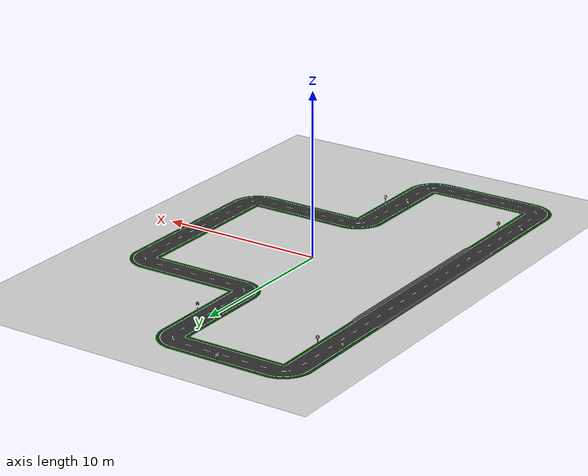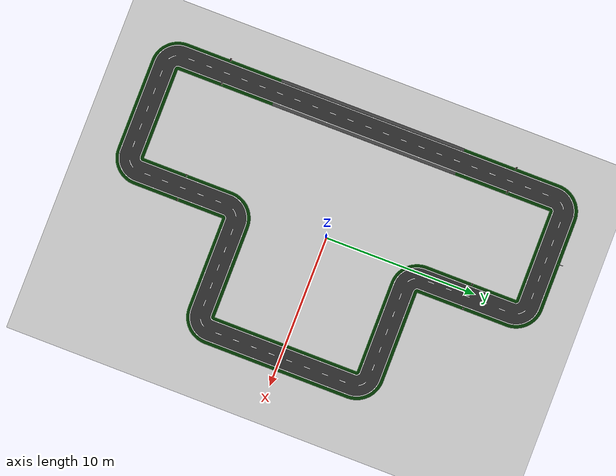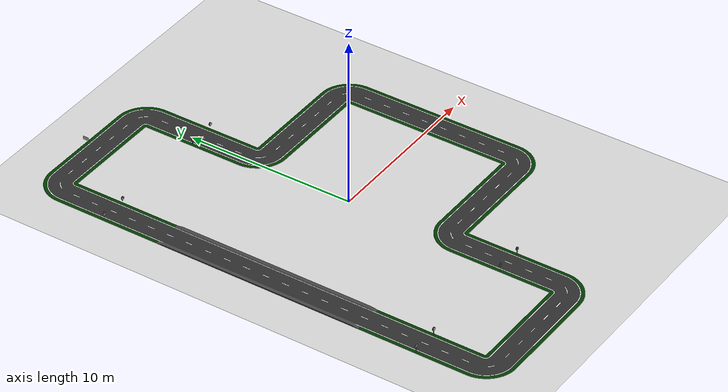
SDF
<sdf version="1.7">
 <world name="default">
  <light name="sun" type="directional">
   <pose>0 0 10 0 -0 0</pose>
   <diffuse>0.8 0.8 0.8 1</diffuse>
   <specular>0.2 0.2 0.2 1</specular>
   <attenuation>
    <range>1000</range>
    <constant>0.9</constant>
    <linear>0.01</linear>
    <quadratic>0.001</quadratic>
   </attenuation>
   <direction>-0.5 0.1 -0.9</direction>
   <spot><inner_angle>0</inner_angle><outer_angle>0</outer_angle><falloff>0</falloff></spot>
  </light>
  <model name="ground_plane">
   <static>1</static>
   <link name="link">
    <collision name="collision">
     <geometry><plane><normal>0 0 1</normal><size>100 100</size></plane></geometry>
     <surface>
      <contact><collide_bitmask>65535</collide_bitmask></contact>
      <friction><ode><mu>100</mu><mu2>50</mu2></ode></friction>
     </surface>
    </collision>
    <visual name="visual">
     <cast_shadows>0</cast_shadows>
     <geometry><plane><normal>0 0 1</normal><size>100 100</size></plane></geometry>
     <material>
      <script><uri>file://media/materials/scripts/gazebo.material</uri><name>Gazebo/Grey</name></script>
     </material>
    </visual>
   </link>
  </model>
  <gravity>0 0 -9.8</gravity>
  <magnetic_field>6e-06 2.3e-05 -4.2e-05</magnetic_field>
  <atmosphere type="adiabatic"/>
  <physics type="ode">
   <max_step_size>0.001</max_step_size>
   <real_time_factor>1</real_time_factor>
   <real_time_update_rate>1000</real_time_update_rate>
  </physics>
  <scene><ambient>0.4 0.4 0.4 1</ambient><background>0.7 0.7 0.7 1</background><shadows>1</shadows></scene>
  <spherical_coordinates>
   <surface_model>EARTH_WGS84</surface_model>
   <latitude_deg>0</latitude_deg>
   <longitude_deg>0</longitude_deg>
   <elevation>0</elevation>
   <heading_deg>0</heading_deg>
  </spherical_coordinates>
  <model name="SimpleEnvV2Scaled">
   <link name="link_0">
    <inertial>
     <mass>1</mass>
     <inertia>
      <ixx>0.166667</ixx>
      <ixy>0</ixy>
      <ixz>0</ixz>
      <iyy>0.166667</iyy>
      <iyz>0</iyz>
      <izz>0.166667</izz>
     </inertia>
    </inertial>
    <visual name="visual">
     <geometry>
      <mesh>
       <uri>/home/ben/catkin_ws/src/bWeatherley/models/dae_exports/simple_environment_v2/simple_environment_v2.dae</uri>
       <scale>0.2 0.2 0.2</scale>
      </mesh>
     </geometry>
     <cast_shadows>0</cast_shadows>
    </visual>
    <collision name="collision">
     <geometry>
      <mesh>
       <uri>/home/ben/catkin_ws/src/bWeatherley/models/dae_exports/simple_environment_v2/simple_environment_v2.dae</uri>
       <scale>0.2 0.2 0.2</scale>
      </mesh>
     </geometry>
     <surface>
      <friction>
       <ode><mu>1</mu><mu2>1</mu2><fdir1>0 0 0</fdir1><slip1>0</slip1><slip2>0</slip2></ode>
       <torsional>
        <coefficient>1</coefficient>
        <patch_radius>0</patch_radius>
        <surface_radius>0</surface_radius>
        <use_patch_radius>1</use_patch_radius>
        <ode><slip>0</slip></ode>
       </torsional>
      </friction>
      <bounce><restitution_coefficient>0</restitution_coefficient><threshold>1e+06</threshold></bounce>
      <contact>
       <collide_without_contact>0</collide_without_contact>
       <collide_without_contact_bitmask>1</collide_without_contact_bitmask>
       <collide_bitmask>1</collide_bitmask>
       <ode>
        <soft_cfm>0</soft_cfm>
        <soft_erp>0.2</soft_erp>
        <kp>1e+13</kp>
        <kd>1</kd>
        <max_vel>0.01</max_vel>
        <min_depth>0</min_depth>
       </ode>
       <bullet>
        <split_impulse>1</split_impulse>
        <split_impulse_penetration_threshold>-0.01</split_impulse_penetration_threshold>
        <soft_cfm>0</soft_cfm>
        <soft_erp>0.2</soft_erp>
        <kp>1e+13</kp>
        <kd>1</kd>
       </bullet>
      </contact>
     </surface>
    </collision>
   </link>
   <static>1</static>
   <pose>-3.4e-05 0.00167 0 0 -0 0</pose>
  </model>
  <light name="user_point_light_0" type="point">
   <pose>-7.44259 -10.9806 1 0 -0 0</pose>
   <diffuse>0.5 0.5 0.5 1</diffuse>
   <specular>0.1 0.1 0.1 1</specular>
   <attenuation>
    <range>20</range>
    <constant>0.5</constant>
    <linear>0.01</linear>
    <quadratic>0.001</quadratic>
   </attenuation>
   <cast_shadows>0</cast_shadows>
   <direction>0 0 -1</direction>
  </light>
  <light name="user_point_light_1" type="point">
   <pose>-5.34703 -13.7994 1 0 -0 0</pose>
   <diffuse>0.5 0.5 0.5 1</diffuse>
   <specular>0.1 0.1 0.1 1</specular>
   <attenuation>
    <range>20</range>
    <constant>0.5</constant>
    <linear>0.01</linear>
    <quadratic>0.001</quadratic>
   </attenuation>
   <cast_shadows>0</cast_shadows>
   <direction>0 0 -1</direction>
  </light>
  <light name="user_point_light_2" type="point">
   <pose>-1.77246 -13.6496 1 0 -0 0</pose>
   <diffuse>0.5 0.5 0.5 1</diffuse>
   <specular>0.1 0.1 0.1 1</specular>
   <attenuation>
    <range>20</range>
    <constant>0.5</constant>
    <linear>0.01</linear>
    <quadratic>0.001</quadratic>
   </attenuation>
   <cast_shadows>0</cast_shadows>
   <direction>0 0 -1</direction>
  </light>
  <light name="user_point_light_3" type="point">
   <pose>0.275807 -10.9331 1 0 -0 0</pose>
   <diffuse>0.5 0.5 0.5 1</diffuse>
   <specular>0.1 0.1 0.1 1</specular>
   <attenuation>
    <range>20</range>
    <constant>0.5</constant>
    <linear>0.01</linear>
    <quadratic>0.001</quadratic>
   </attenuation>
   <cast_shadows>0</cast_shadows>
   <direction>0 0 -1</direction>
  </light>
  <light name="user_point_light_4" type="point">
   <pose>2.78332 -5.72429 1 0 -0 0</pose>
   <diffuse>0.5 0.5 0.5 1</diffuse>
   <specular>0.1 0.1 0.1 1</specular>
   <attenuation>
    <range>20</range>
    <constant>0.5</constant>
    <linear>0.01</linear>
    <quadratic>0.001</quadratic>
   </attenuation>
   <cast_shadows>0</cast_shadows>
   <direction>0 0 -1</direction>
  </light>
  <light name="user_point_light_5" type="point">
   <pose>-7.48645 -6.43221 1 0 -0 0</pose>
   <diffuse>0.5 0.5 0.5 1</diffuse>
   <specular>0.1 0.1 0.1 1</specular>
   <attenuation>
    <range>20</range>
    <constant>0.5</constant>
    <linear>0.01</linear>
    <quadratic>0.001</quadratic>
   </attenuation>
   <cast_shadows>0</cast_shadows>
   <direction>0 0 -1</direction>
  </light>
  <light name="user_point_light_6" type="point">
   <pose>6.9191 -5.86295 1 0 -0 0</pose>
   <diffuse>0.5 0.5 0.5 1</diffuse>
   <specular>0.1 0.1 0.1 1</specular>
   <attenuation>
    <range>20</range>
    <constant>0.5</constant>
    <linear>0.01</linear>
    <quadratic>0.001</quadratic>
   </attenuation>
   <cast_shadows>0</cast_shadows>
   <direction>0 0 -1</direction>
  </light>
  <light name="user_point_light_7" type="point">
   <pose>-7.45043 -0.47052 1 0 -0 0</pose>
   <diffuse>0.5 0.5 0.5 1</diffuse>
   <specular>0.1 0.1 0.1 1</specular>
   <attenuation>
    <range>20</range>
    <constant>0.5</constant>
    <linear>0.01</linear>
    <quadratic>0.001</quadratic>
   </attenuation>
   <cast_shadows>0</cast_shadows>
   <direction>0 0 -1</direction>
  </light>
  <light name="user_point_light_8" type="point">
   <pose>8.10008 -0.067351 1 0 -0 0</pose>
   <diffuse>0.5 0.5 0.5 1</diffuse>
   <specular>0.1 0.1 0.1 1</specular>
   <attenuation>
    <range>20</range>
    <constant>0.5</constant>
    <linear>0.01</linear>
    <quadratic>0.001</quadratic>
   </attenuation>
   <cast_shadows>0</cast_shadows>
   <direction>0 0 -1</direction>
  </light>
  <light name="user_point_light_9" type="point">
   <pose>-7.48405 5.63951 1 0 -0 0</pose>
   <diffuse>0.5 0.5 0.5 1</diffuse>
   <specular>0.1 0.1 0.1 1</specular>
   <attenuation>
    <range>20</range>
    <constant>0.5</constant>
    <linear>0.01</linear>
    <quadratic>0.001</quadratic>
   </attenuation>
   <cast_shadows>0</cast_shadows>
   <direction>0 0 -1</direction>
  </light>
  <light name="user_point_light_10" type="point">
   <pose>8.00243 5.3316 1 0 -0 0</pose>
   <diffuse>0.5 0.5 0.5 1</diffuse>
   <specular>0.1 0.1 0.1 1</specular>
   <attenuation>
    <range>20</range>
    <constant>0.5</constant>
    <linear>0.01</linear>
    <quadratic>0.001</quadratic>
   </attenuation>
   <cast_shadows>0</cast_shadows>
   <direction>0 0 -1</direction>
  </light>
  <light name="user_point_light_11" type="point">
   <pose>-7.37652 10.3379 1 0 -0 0</pose>
   <diffuse>0.5 0.5 0.5 1</diffuse>
   <specular>0.1 0.1 0.1 1</specular>
   <attenuation>
    <range>20</range>
    <constant>0.5</constant>
    <linear>0.01</linear>
    <quadratic>0.001</quadratic>
   </attenuation>
   <cast_shadows>0</cast_shadows>
   <direction>0 0 -1</direction>
  </light>
  <light name="user_point_light_12" type="point">
   <pose>0.324463 10.4894 1 0 -0 0</pose>
   <diffuse>0.5 0.5 0.5 1</diffuse>
   <specular>0.1 0.1 0.1 1</specular>
   <attenuation>
    <range>20</range>
    <constant>0.5</constant>
    <linear>0.01</linear>
    <quadratic>0.001</quadratic>
   </attenuation>
   <cast_shadows>0</cast_shadows>
   <direction>0 0 -1</direction>
  </light>
  <light name="user_point_light_13" type="point">
   <pose>3.17055 5.8801 1 0 -0 0</pose>
   <diffuse>0.5 0.5 0.5 1</diffuse>
   <specular>0.1 0.1 0.1 1</specular>
   <attenuation>
    <range>20</range>
    <constant>0.5</constant>
    <linear>0.01</linear>
    <quadratic>0.001</quadratic>
   </attenuation>
   <cast_shadows>0</cast_shadows>
   <direction>0 0 -1</direction>
  </light>
  <light name="user_point_light_14" type="point">
   <pose>-5.29164 13.631 1 0 -0 0</pose>
   <diffuse>0.5 0.5 0.5 1</diffuse>
   <specular>0.1 0.1 0.1 1</specular>
   <attenuation>
    <range>20</range>
    <constant>0.5</constant>
    <linear>0.01</linear>
    <quadratic>0.001</quadratic>
   </attenuation>
   <cast_shadows>0</cast_shadows>
   <direction>0 0 -1</direction>
  </light>
  <light name="user_point_light_15" type="point">
   <pose>-1.25779 13.4538 1 0 -0 0</pose>
   <diffuse>0.5 0.5 0.5 1</diffuse>
   <specular>0.1 0.1 0.1 1</specular>
   <attenuation>
    <range>20</range>
    <constant>0.5</constant>
    <linear>0.01</linear>
    <quadratic>0.001</quadratic>
   </attenuation>
   <cast_shadows>0</cast_shadows>
   <direction>0 0 -1</direction>
  </light>
 </world>
</sdf>
